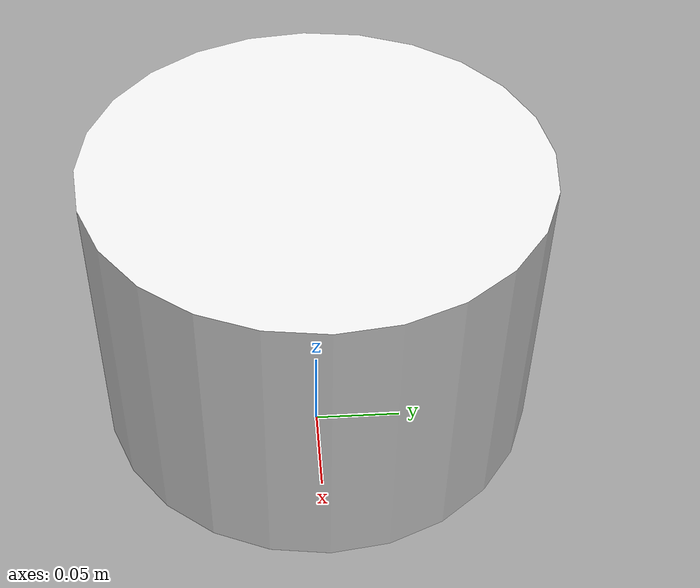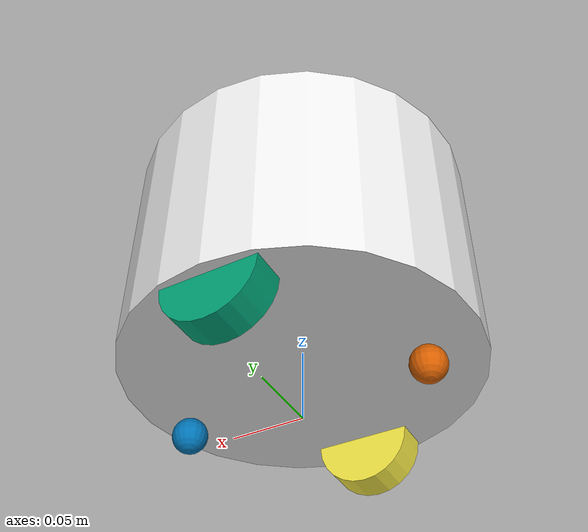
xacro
<?xml version="1.0"?>
<robot xmlns:xacro="http://www.ros.org/wiki/xacro">

  <!-- Dimensions & Physical Parameters           -->
  <xacro:property name="chassis_radius" value="0.12"/>
  <xacro:property name="chassis_height" value="0.16"/>
  <xacro:property name="chassis_mass" value="3.0"/>

  <xacro:property name="wheel_radius" value="0.033"/>
  <xacro:property name="wheel_width" value="0.024"/>
  <xacro:property name="wheel_mass" value="0.15"/>
  <xacro:property name="wheel_separation" value="0.20"/>

  <xacro:property name="caster_radius" value="0.012"/>
  <xacro:property name="caster_mass" value="0.05"/>
  <xacro:property name="caster_offset_x" value="0.085"/>

  <!-- Base Footprint (Ground plane projection)    -->
  <link name="base_footprint"/>

  <joint name="base_footprint_joint" type="fixed">
    <parent link="base_footprint"/>
    <child link="base_link"/>
    <!-- Position base_link above ground by wheel_radius -->
    <origin xyz="0 0 ${wheel_radius}" rpy="0 0 0"/>
  </joint>

  <!-- Base Link (Chassis Body Origin)           -->
  <link name="base_link">
    <visual>
      <origin xyz="0 0 ${chassis_height / 2.0}" rpy="0 0 0"/>
      <geometry>
        <cylinder radius="${chassis_radius}" length="${chassis_height}"/>
      </geometry>
      <material name="chassis_white"/>
    </visual>
    <collision>
      <origin xyz="0 0 ${chassis_height / 2.0}" rpy="0 0 0"/>
      <geometry>
        <cylinder radius="${chassis_radius}" length="${chassis_height}"/>
      </geometry>
    </collision>
    <!-- Center of mass slightly low for stability -->
    <inertial>
      <origin xyz="0 0 ${chassis_height / 3.0}" rpy="0 0 0"/>
      <mass value="${chassis_mass}"/>
      <inertia ixx="${(chassis_mass/12.0) * (3*chassis_radius*chassis_radius + chassis_height*chassis_height)}" ixy="0.0" ixz="0.0"
               iyy="${(chassis_mass/12.0) * (3*chassis_radius*chassis_radius + chassis_height*chassis_height)}" iyz="0.0"
               izz="${(chassis_mass/2.0) * (chassis_radius*chassis_radius)}"/>
    </inertial>
  </link>

  <!-- Drive Wheel Macro                          -->
  <xacro:macro name="drive_wheel" params="prefix y_offset">
    <link name="${prefix}_wheel_link">
      <visual>
        <origin xyz="0 0 0" rpy="${pi/2} 0 0"/>
        <geometry>
          <cylinder radius="${wheel_radius}" length="${wheel_width}"/>
        </geometry>
        <material name="rubber_dark"/>
      </visual>
      <collision>
        <geometry>
          <sphere radius="${wheel_radius}"/>
        </geometry>
      </collision>
      <inertial>
        <origin xyz="0 0 0" rpy="${pi/2} 0 0"/>
        <mass value="${wheel_mass}"/>
        <inertia ixx="${(wheel_mass/12.0) * (3*wheel_radius*wheel_radius + wheel_width*wheel_width)}" ixy="0.0" ixz="0.0"
                 iyy="${(wheel_mass/12.0) * (3*wheel_radius*wheel_radius + wheel_width*wheel_width)}" iyz="0.0"
                 izz="${(wheel_mass/2.0) * (wheel_radius*wheel_radius)}"/>
      </inertial>
    </link>

    <joint name="${prefix}_wheel_joint" type="continuous">
      <parent link="base_link"/>
      <child link="${prefix}_wheel_link"/>
      <origin xyz="0 ${y_offset} 0" rpy="0 0 0"/>
      <axis xyz="0 1 0"/>
    </joint>
  </xacro:macro>

  <!-- Left and Right Drive Wheels -->
  <xacro:drive_wheel prefix="left" y_offset="${wheel_separation / 2.0}"/>
  <xacro:drive_wheel prefix="right" y_offset="${-wheel_separation / 2.0}"/>

  <!-- Caster Wheel Macro (Passive Spheres)       -->
  <xacro:macro name="caster_wheel" params="prefix x_offset">
    <link name="${prefix}_caster_link">
      <visual>
        <origin xyz="0 0 0" rpy="0 0 0"/>
        <geometry>
          <sphere radius="${caster_radius}"/>
        </geometry>
        <material name="caster_metal"/>
      </visual>
      <collision>
        <origin xyz="0 0 0" rpy="0 0 0"/>
        <geometry>
          <sphere radius="${caster_radius}"/>
        </geometry>
      </collision>
      <inertial>
        <mass value="${caster_mass}"/>
        <inertia ixx="${(2.0/5.0) * caster_mass * caster_radius * caster_radius}" ixy="0.0" ixz="0.0"
                 iyy="${(2.0/5.0) * caster_mass * caster_radius * caster_radius}" iyz="0.0"
                 izz="${(2.0/5.0) * caster_mass * caster_radius * caster_radius}"/>
      </inertial>
    </link>

    <joint name="${prefix}_caster_joint" type="fixed">
      <parent link="base_link"/>
      <child link="${prefix}_caster_link"/>
      <!-- Place caster bottom touching ground: z = -(wheel_radius - caster_radius) -->
      <origin xyz="${x_offset} 0 ${-(wheel_radius - caster_radius)}" rpy="0 0 0"/>
    </joint>
  </xacro:macro>

  <!-- Front and Rear Casters -->
  <xacro:caster_wheel prefix="front" x_offset="${caster_offset_x}"/>
  <xacro:caster_wheel prefix="rear" x_offset="${-caster_offset_x}"/>

</robot>
